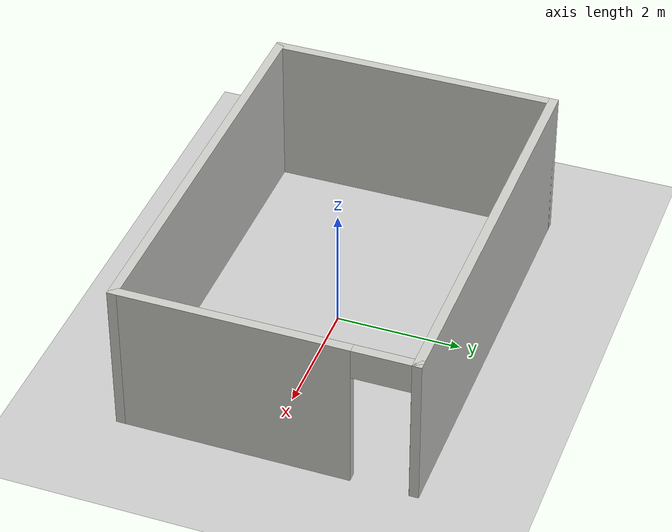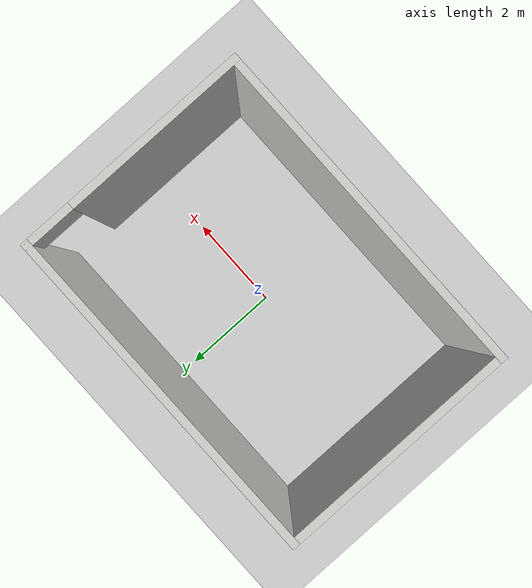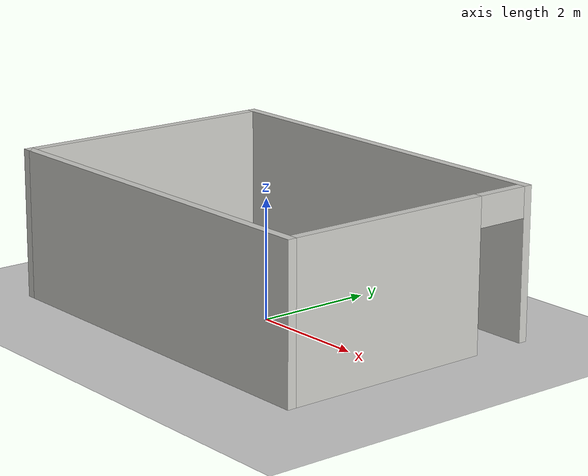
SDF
<sdf version="1.7">
 <world name="default">
  <light name="sun" type="directional">
   <pose>0 0 10 0 -0 0</pose>
   <diffuse>0.8 0.8 0.8 1</diffuse>
   <specular>0.2 0.2 0.2 1</specular>
   <attenuation>
    <range>1000</range>
    <constant>0.9</constant>
    <linear>0.01</linear>
    <quadratic>0.001</quadratic>
   </attenuation>
   <direction>-0.5 0.1 -0.9</direction>
   <spot><inner_angle>0</inner_angle><outer_angle>0</outer_angle><falloff>0</falloff></spot>
  </light>
  <model name="ground_plane">
   <static>1</static>
   <link name="link">
    <collision name="collision">
     <geometry><plane><normal>0 0 1</normal><size>100 100</size></plane></geometry>
     <surface><friction><ode><mu>100</mu><mu2>50</mu2></ode></friction></surface>
    </collision>
    <visual name="visual">
     <cast_shadows>0</cast_shadows>
     <geometry><plane><normal>0 0 1</normal><size>100 100</size></plane></geometry>
     <material>
      <script><uri>file://media/materials/scripts/gazebo.material</uri><name>Gazebo/Grey</name></script>
     </material>
    </visual>
   </link>
  </model>
  <gravity>0 0 -9.8</gravity>
  <magnetic_field>6e-06 2.3e-05 -4.2e-05</magnetic_field>
  <atmosphere type="adiabatic"/>
  <physics type="ode">
   <max_step_size>0.001</max_step_size>
   <real_time_factor>1</real_time_factor>
   <real_time_update_rate>1000</real_time_update_rate>
  </physics>
  <scene><ambient>0.4 0.4 0.4 1</ambient><background>0.7 0.7 0.7 1</background><shadows>1</shadows></scene>
  <audio><device>default</device></audio>
  <spherical_coordinates>
   <surface_model>EARTH_WGS84</surface_model>
   <latitude_deg>0</latitude_deg>
   <longitude_deg>0</longitude_deg>
   <elevation>0</elevation>
   <heading_deg>0</heading_deg>
  </spherical_coordinates>
  <model name="Lab_walls">
   <pose>-0.03036 0.6577 0 0 -0 0</pose>
   <link name="Wall_3">
    <collision name="Wall_3_Collision">
     <geometry><box><size>6.75 0.15 2.5</size></box></geometry>
     <pose>0 0 1.25 0 -0 0</pose>
    </collision>
    <visual name="Wall_3_Visual">
     <pose>0 0 1.25 0 -0 0</pose>
     <geometry><box><size>6.75 0.15 2.5</size></box></geometry>
     <material>
      <script><uri>file://media/materials/scripts/gazebo.material</uri><name>Gazebo/CeilingTiled</name></script>
      <ambient>1 1 1 1</ambient>
     </material>
     <meta><layer>0</layer></meta>
    </visual>
    <pose>-0 1.7225 0 0 -0 0</pose>
   </link>
   <link name="Wall_7">
    <pose>3.3 -0.5775 0 0 -0 -1.5708</pose>
    <visual name="Wall_7_Visual_0">
     <pose>-2.3005 0 1.25 0 -0 0</pose>
     <geometry><box><size>0.148992 0.15 2.5</size></box></geometry>
     <material>
      <script><uri>file://media/materials/scripts/gazebo.material</uri><name>Gazebo/CeilingTiled</name></script>
      <ambient>1 1 1 1</ambient>
     </material>
     <meta><layer>0</layer></meta>
    </visual>
    <collision name="Wall_7_Collision_0">
     <geometry><box><size>0.148992 0.15 2.5</size></box></geometry>
     <pose>-2.3005 0 1.25 0 -0 0</pose>
    </collision>
    <visual name="Wall_7_Visual_1">
     <pose>0.524496 0 1.25 0 -0 0</pose>
     <geometry><box><size>3.70101 0.15 2.5</size></box></geometry>
     <material>
      <script><uri>file://media/materials/scripts/gazebo.material</uri><name>Gazebo/CeilingTiled</name></script>
      <ambient>1 1 1 1</ambient>
     </material>
     <meta><layer>0</layer></meta>
    </visual>
    <collision name="Wall_7_Collision_1">
     <geometry><box><size>3.70101 0.15 2.5</size></box></geometry>
     <pose>0.524496 0 1.25 0 -0 0</pose>
    </collision>
    <visual name="Wall_7_Visual_2">
     <pose>-1.77601 0 2.25 0 -0 0</pose>
     <geometry><box><size>0.9 0.15 0.5</size></box></geometry>
     <material>
      <script><uri>file://media/materials/scripts/gazebo.material</uri><name>Gazebo/CeilingTiled</name></script>
      <ambient>1 1 1 1</ambient>
     </material>
     <meta><layer>0</layer></meta>
    </visual>
    <collision name="Wall_7_Collision_2">
     <geometry><box><size>0.9 0.15 0.5</size></box></geometry>
     <pose>-1.77601 0 2.25 0 -0 0</pose>
    </collision>
   </link>
   <link name="Wall_8">
    <collision name="Wall_8_Collision">
     <geometry><box><size>6.75 0.15 2.5</size></box></geometry>
     <pose>0 0 1.25 0 -0 0</pose>
    </collision>
    <visual name="Wall_8_Visual">
     <pose>0 0 1.25 0 -0 0</pose>
     <geometry><box><size>6.75 0.15 2.5</size></box></geometry>
     <material>
      <script><uri>file://media/materials/scripts/gazebo.material</uri><name>Gazebo/CeilingTiled</name></script>
      <ambient>1 1 1 1</ambient>
     </material>
     <meta><layer>0</layer></meta>
    </visual>
    <pose>-0 -2.8775 0 0 -0 3.14159</pose>
   </link>
   <link name="Wall_9">
    <collision name="Wall_9_Collision">
     <geometry><box><size>4.75 0.15 2.5</size></box></geometry>
     <pose>0 0 1.25 0 -0 0</pose>
    </collision>
    <visual name="Wall_9_Visual">
     <pose>0 0 1.25 0 -0 0</pose>
     <geometry><box><size>4.75 0.15 2.5</size></box></geometry>
     <material>
      <script><uri>file://media/materials/scripts/gazebo.material</uri><name>Gazebo/CeilingTiled</name></script>
      <ambient>1 1 1 1</ambient>
     </material>
     <meta><layer>0</layer></meta>
    </visual>
    <pose>-3.3 -0.5775 0 0 -0 1.5708</pose>
   </link>
   <static>1</static>
  </model>
 </world>
</sdf>
